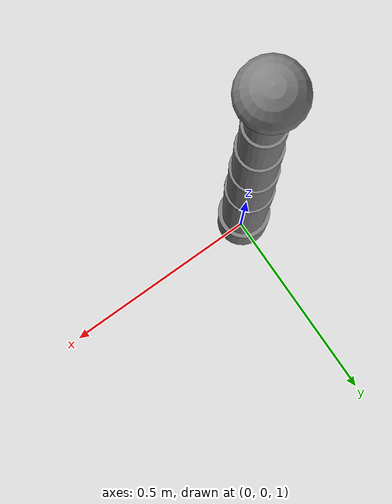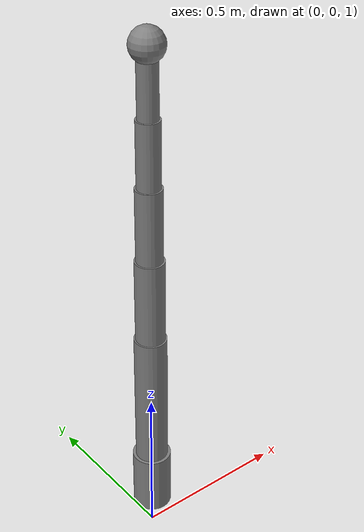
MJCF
<mujoco model="seven_dof_arm">
  <option gravity="0 0 -9.81" integrator="Euler" timestep="0.0005"/>
  <worldbody>
    <body name="link0" pos="0 0 1.2">
      <joint name="j0" type="hinge" axis="0 0 1" armature="0.02" damping="2"/>
      <geom type="cylinder" size="0.06 0.1" mass="1.0"/>
      <body name="link1" pos="0 0 0.3">
        <joint name="j1" type="hinge" axis="0 1 0" armature="0.02" damping="2"/>
        <geom type="cylinder" size="0.05 0.25" mass="1.0"/>
        <body name="link2" pos="0 0 0.3">
          <joint name="j2" type="hinge" axis="1 0 0" armature="0.02" damping="2"/>
          <geom type="cylinder" size="0.045 0.22" mass="0.9"/>
          <body name="link3" pos="0 0 0.25">
            <joint name="j3" type="hinge" axis="0 1 0" armature="0.02" damping="2"/>
            <geom type="cylinder" size="0.04 0.2" mass="0.8"/>
            <body name="link4" pos="0 0 0.22">
              <joint name="j4" type="hinge" axis="1 0 0" armature="0.02" damping="2"/>
              <geom type="cylinder" size="0.035 0.18" mass="0.7"/>
              <body name="link5" pos="0 0 0.2">
                <joint name="j5" type="hinge" axis="0 1 0" armature="0.02" damping="2"/>
                <geom type="cylinder" size="0.03 0.16" mass="0.6"/>
                <body name="link6" pos="0 0 0.18">
                  <joint name="j6" type="hinge" axis="1 0 0" armature="0.02" damping="2"/>
                  <geom type="sphere" size="0.05" mass="2.0"/>
                </body>
              </body>
            </body>
          </body>
        </body>
      </body>
    </body>
  </worldbody>
  <actuator>
    <motor joint="j0" ctrlrange="-200 200"/>
    <motor joint="j1" ctrlrange="-200 200"/>
    <motor joint="j2" ctrlrange="-200 200"/>
    <motor joint="j3" ctrlrange="-200 200"/>
    <motor joint="j4" ctrlrange="-200 200"/>
    <motor joint="j5" ctrlrange="-200 200"/>
    <motor joint="j6" ctrlrange="-200 200"/>
  </actuator>
</mujoco>
